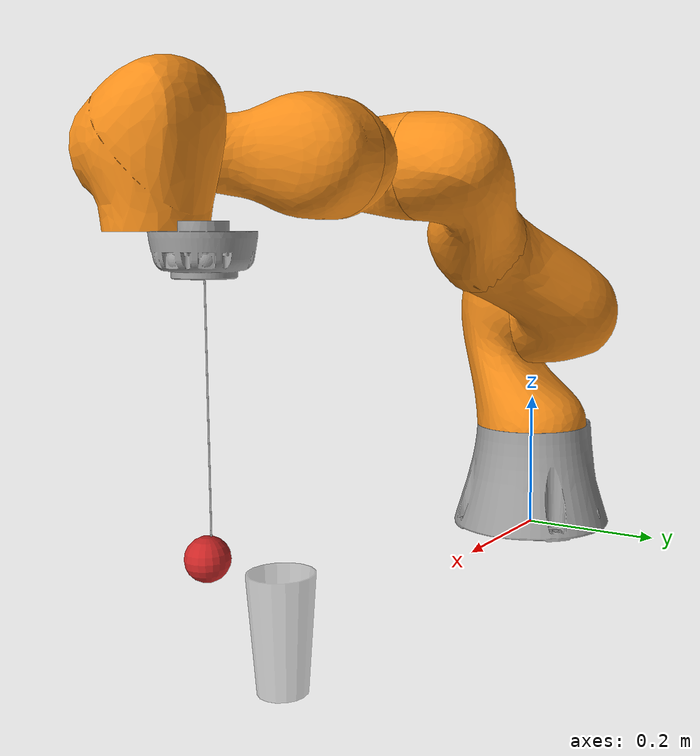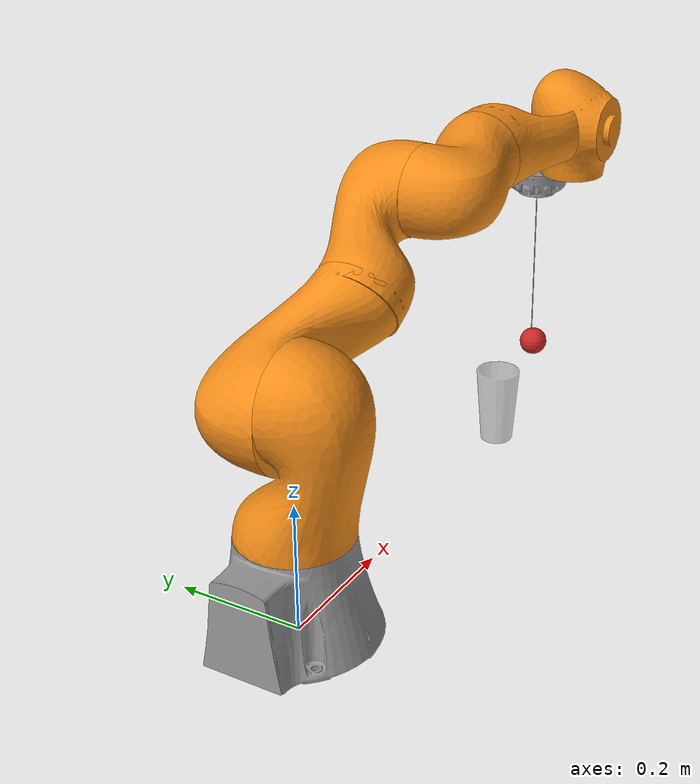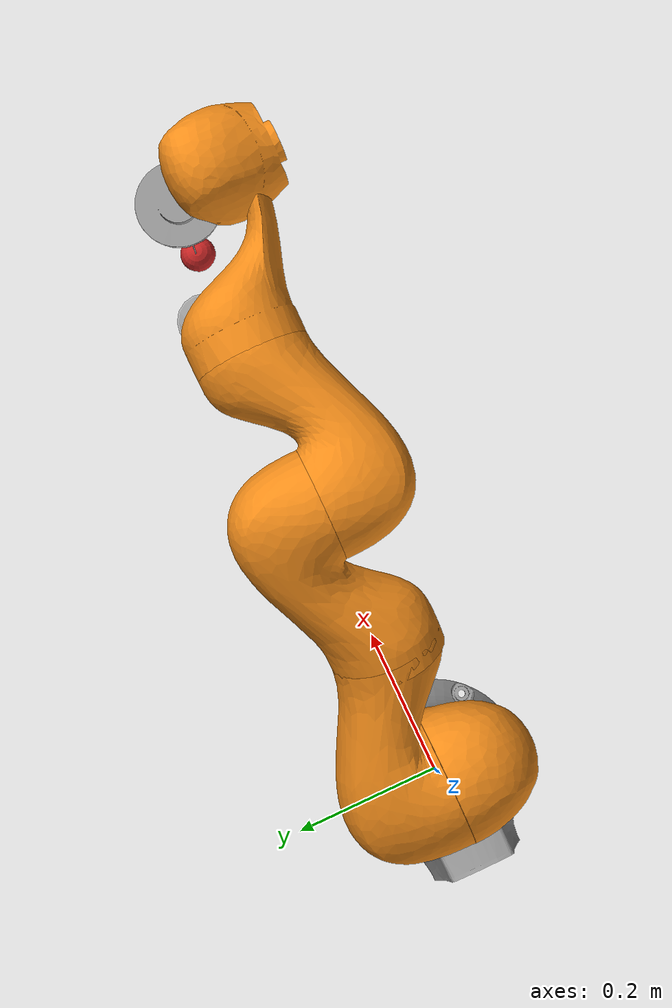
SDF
<?xml version='1.0'?>
<sdf version='1.6'>
  <model name='fish'>
    <link name='iiwa_link_0'>
      <pose frame=''>0 0 0 0 -0 0</pose>
      <inertial>
        <pose frame=''>-0.1 0 0.07 0 -0 0</pose>
        <mass>5</mass>
        <inertia>
          <ixx>0.05</ixx>
          <ixy>0</ixy>
          <ixz>0</ixz>
          <iyy>0.06</iyy>
          <iyz>0</iyz>
          <izz>0.03</izz>
        </inertia>
      </inertial>
      <gravity>1</gravity>
      <velocity_decay/>
      <self_collide>0</self_collide>
      <enable_wind>0</enable_wind>
      <kinematic>0</kinematic>
      <visual name='iiwa_link_0_visual'>
        <pose frame=''>0 0 0 0 -0 0</pose>
        <geometry>
          <mesh>
            <scale>1 1 1</scale>
            <uri>/home/snehal/Desktop/Thesis/IfO/KUKA_Task/ros_ws/src/iiwa_stack/iiwa_description/meshes/iiwa7/visual/link_0.stl</uri>
          </mesh>
        </geometry>
        <material>
          <script>
            <name>Gazebo/Grey</name>
            <uri>file://media/materials/scripts/gazebo.material</uri>
          </script>
        </material>
        <transparency>0</transparency>
        <cast_shadows>1</cast_shadows>
      </visual>
      <collision name='iiwa_link_0_collision'>
        <laser_retro>0</laser_retro>
        <max_contacts>10</max_contacts>
        <pose frame=''>0 0 0 0 -0 0</pose>
        <geometry>
          <mesh>
            <uri>/home/snehal/Desktop/Thesis/IfO/KUKA_Task/ros_ws/src/iiwa_stack/iiwa_description/meshes/iiwa7/collision/link_0.stl</uri>
            <scale>1 1 1</scale>
          </mesh>
        </geometry>
        <surface>
          <friction>
            <ode>
              <mu>0.2</mu>
              <mu2>0.2</mu2>
              <fdir1>0 0 0</fdir1>
              <slip1>0</slip1>
              <slip2>0</slip2>
            </ode>
            <torsional>
              <coefficient>1</coefficient>
              <patch_radius>0</patch_radius>
              <surface_radius>0</surface_radius>
              <use_patch_radius>1</use_patch_radius>
              <ode>
                <slip>0</slip>
              </ode>
            </torsional>
          </friction>
          <bounce>
            <restitution_coefficient>0</restitution_coefficient>
            <threshold>1e+06</threshold>
          </bounce>
          <contact>
            <collide_without_contact>0</collide_without_contact>
            <collide_without_contact_bitmask>1</collide_without_contact_bitmask>
            <collide_bitmask>1</collide_bitmask>
            <ode>
              <soft_cfm>0</soft_cfm>
              <soft_erp>0.2</soft_erp>
              <kp>1e+13</kp>
              <kd>1</kd>
              <max_vel>0.01</max_vel>
              <min_depth>0</min_depth>
            </ode>
            <bullet>
              <split_impulse>1</split_impulse>
              <split_impulse_penetration_threshold>-0.01</split_impulse_penetration_threshold>
              <soft_cfm>0</soft_cfm>
              <soft_erp>0.2</soft_erp>
              <kp>1e+13</kp>
              <kd>1</kd>
            </bullet>
          </contact>
        </surface>
      </collision>
    </link>
    <link name='iiwa_link_1'>
      <pose frame=''>0 0 0.15 0 -0 0</pose>
      <inertial>
        <pose frame=''>0 -0.03 0.12 0 -0 0</pose>
        <mass>3.4525</mass>
        <inertia>
          <ixx>0.02183</ixx>
          <ixy>0</ixy>
          <ixz>0</ixz>
          <iyy>0.007703</iyy>
          <iyz>-0.003887</iyz>
          <izz>0.02083</izz>
        </inertia>
      </inertial>
      <gravity>1</gravity>
      <velocity_decay/>
      <self_collide>0</self_collide>
      <enable_wind>0</enable_wind>
      <kinematic>0</kinematic>
      <visual name='iiwa_link_1_visual'>
        <pose frame=''>0 0 0.0075 0 -0 0</pose>
        <geometry>
          <mesh>
            <scale>1 1 1</scale>
            <uri>/home/snehal/Desktop/Thesis/IfO/KUKA_Task/ros_ws/src/iiwa_stack/iiwa_description/meshes/iiwa7/visual/link_1.stl</uri>
          </mesh>
        </geometry>
        <material>
          <script>
            <name>Gazebo/Orange</name>
            <uri>file://media/materials/scripts/gazebo.material</uri>
          </script>
          <emissive>0 0 0 1</emissive>
        </material>
        <transparency>0</transparency>
        <cast_shadows>1</cast_shadows>
      </visual>
      <collision name='iiwa_link_1_collision'>
        <laser_retro>0</laser_retro>
        <max_contacts>10</max_contacts>
        <pose frame=''>0 0 0.0075 0 -0 0</pose>
        <geometry>
          <mesh>
            <uri>/home/snehal/Desktop/Thesis/IfO/KUKA_Task/ros_ws/src/iiwa_stack/iiwa_description/meshes/iiwa7/collision/link_1.stl</uri>
            <scale>1 1 1</scale>
          </mesh>
        </geometry>
        <surface>
          <friction>
            <ode>
              <mu>0.2</mu>
              <mu2>0.2</mu2>
              <fdir1>0 0 0</fdir1>
              <slip1>0</slip1>
              <slip2>0</slip2>
            </ode>
            <torsional>
              <coefficient>1</coefficient>
              <patch_radius>0</patch_radius>
              <surface_radius>0</surface_radius>
              <use_patch_radius>1</use_patch_radius>
              <ode>
                <slip>0</slip>
              </ode>
            </torsional>
          </friction>
          <bounce>
            <restitution_coefficient>0</restitution_coefficient>
            <threshold>1e+06</threshold>
          </bounce>
          <contact>
            <collide_without_contact>0</collide_without_contact>
            <collide_without_contact_bitmask>1</collide_without_contact_bitmask>
            <collide_bitmask>1</collide_bitmask>
            <ode>
              <soft_cfm>0</soft_cfm>
              <soft_erp>0.2</soft_erp>
              <kp>1e+13</kp>
              <kd>1</kd>
              <max_vel>0.01</max_vel>
              <min_depth>0</min_depth>
            </ode>
            <bullet>
              <split_impulse>1</split_impulse>
              <split_impulse_penetration_threshold>-0.01</split_impulse_penetration_threshold>
              <soft_cfm>0</soft_cfm>
              <soft_erp>0.2</soft_erp>
              <kp>1e+13</kp>
              <kd>1</kd>
            </bullet>
          </contact>
        </surface>
      </collision>
    </link>
    <link name='iiwa_link_2'>
      <pose frame=''>0 0 0.34 1.5708 -1.0472 -3.14159</pose>
      <inertial>
        <pose frame=''>0.0003 0.059 0.042 0 -0 0</pose>
        <mass>3.4821</mass>
        <inertia>
          <ixx>0.02076</ixx>
          <ixy>0</ixy>
          <ixz>-0.003626</ixz>
          <iyy>0.02179</iyy>
          <iyz>0</iyz>
          <izz>0.00779</izz>
        </inertia>
      </inertial>
      <gravity>1</gravity>
      <velocity_decay/>
      <self_collide>0</self_collide>
      <enable_wind>0</enable_wind>
      <kinematic>0</kinematic>
      <visual name='iiwa_link_2_visual'>
        <pose frame=''>0 0 0 0 -0 0</pose>
        <geometry>
          <mesh>
            <scale>1 1 1</scale>
            <uri>/home/snehal/Desktop/Thesis/IfO/KUKA_Task/ros_ws/src/iiwa_stack/iiwa_description/meshes/iiwa7/visual/link_2.stl</uri>
          </mesh>
        </geometry>
        <material>
          <script>
            <name>Gazebo/Orange</name>
            <uri>file://media/materials/scripts/gazebo.material</uri>
          </script>
          <emissive>0 0 0 1</emissive>
        </material>
        <transparency>0</transparency>
        <cast_shadows>1</cast_shadows>
      </visual>
      <collision name='iiwa_link_2_collision'>
        <laser_retro>0</laser_retro>
        <max_contacts>10</max_contacts>
        <pose frame=''>0 0 0 0 -0 0</pose>
        <geometry>
          <mesh>
            <uri>/home/snehal/Desktop/Thesis/IfO/KUKA_Task/ros_ws/src/iiwa_stack/iiwa_description/meshes/iiwa7/collision/link_2.stl</uri>
            <scale>1 1 1</scale>
          </mesh>
        </geometry>
        <surface>
          <friction>
            <ode>
              <mu>0.2</mu>
              <mu2>0.2</mu2>
              <fdir1>0 0 0</fdir1>
              <slip1>0</slip1>
              <slip2>0</slip2>
            </ode>
            <torsional>
              <coefficient>1</coefficient>
              <patch_radius>0</patch_radius>
              <surface_radius>0</surface_radius>
              <use_patch_radius>1</use_patch_radius>
              <ode>
                <slip>0</slip>
              </ode>
            </torsional>
          </friction>
          <bounce>
            <restitution_coefficient>0</restitution_coefficient>
            <threshold>1e+06</threshold>
          </bounce>
          <contact>
            <collide_without_contact>0</collide_without_contact>
            <collide_without_contact_bitmask>1</collide_without_contact_bitmask>
            <collide_bitmask>1</collide_bitmask>
            <ode>
              <soft_cfm>0</soft_cfm>
              <soft_erp>0.2</soft_erp>
              <kp>1e+13</kp>
              <kd>1</kd>
              <max_vel>0.01</max_vel>
              <min_depth>0</min_depth>
            </ode>
            <bullet>
              <split_impulse>1</split_impulse>
              <split_impulse_penetration_threshold>-0.01</split_impulse_penetration_threshold>
              <soft_cfm>0</soft_cfm>
              <soft_erp>0.2</soft_erp>
              <kp>1e+13</kp>
              <kd>1</kd>
            </bullet>
          </contact>
        </surface>
      </collision>
    </link>
    <link name='iiwa_link_3'>
      <pose frame=''>0.181865 0 0.445 0 1.0472 0</pose>
      <inertial>
        <pose frame=''>0 0.03 0.13 0 -0 0</pose>
        <mass>4.05623</mass>
        <inertia>
          <ixx>0.03204</ixx>
          <ixy>0</ixy>
          <ixz>0</ixz>
          <iyy>0.00972</iyy>
          <iyz>0.006227</iyz>
          <izz>0.03042</izz>
        </inertia>
      </inertial>
      <gravity>1</gravity>
      <velocity_decay/>
      <self_collide>0</self_collide>
      <enable_wind>0</enable_wind>
      <kinematic>0</kinematic>
      <visual name='iiwa_link_3_visual'>
        <pose frame=''>0 0 -0.026 0 -0 0</pose>
        <geometry>
          <mesh>
            <scale>1 1 1</scale>
            <uri>/home/snehal/Desktop/Thesis/IfO/KUKA_Task/ros_ws/src/iiwa_stack/iiwa_description/meshes/iiwa7/visual/link_3.stl</uri>
          </mesh>
        </geometry>
        <material>
          <script>
            <name>Gazebo/Orange</name>
            <uri>file://media/materials/scripts/gazebo.material</uri>
          </script>
          <emissive>0 0 0 1</emissive>
        </material>
        <transparency>0</transparency>
        <cast_shadows>1</cast_shadows>
      </visual>
      <collision name='iiwa_link_3_collision'>
        <laser_retro>0</laser_retro>
        <max_contacts>10</max_contacts>
        <pose frame=''>0 0 -0.026 0 -0 0</pose>
        <geometry>
          <mesh>
            <uri>/home/snehal/Desktop/Thesis/IfO/KUKA_Task/ros_ws/src/iiwa_stack/iiwa_description/meshes/iiwa7/collision/link_3.stl</uri>
            <scale>1 1 1</scale>
          </mesh>
        </geometry>
        <surface>
          <friction>
            <ode>
              <mu>0.2</mu>
              <mu2>0.2</mu2>
              <fdir1>0 0 0</fdir1>
              <slip1>0</slip1>
              <slip2>0</slip2>
            </ode>
            <torsional>
              <coefficient>1</coefficient>
              <patch_radius>0</patch_radius>
              <surface_radius>0</surface_radius>
              <use_patch_radius>1</use_patch_radius>
              <ode>
                <slip>0</slip>
              </ode>
            </torsional>
          </friction>
          <bounce>
            <restitution_coefficient>0</restitution_coefficient>
            <threshold>1e+06</threshold>
          </bounce>
          <contact>
            <collide_without_contact>0</collide_without_contact>
            <collide_without_contact_bitmask>1</collide_without_contact_bitmask>
            <collide_bitmask>1</collide_bitmask>
            <ode>
              <soft_cfm>0</soft_cfm>
              <soft_erp>0.2</soft_erp>
              <kp>1e+13</kp>
              <kd>1</kd>
              <max_vel>0.01</max_vel>
              <min_depth>0</min_depth>
            </ode>
            <bullet>
              <split_impulse>1</split_impulse>
              <split_impulse_penetration_threshold>-0.01</split_impulse_penetration_threshold>
              <soft_cfm>0</soft_cfm>
              <soft_erp>0.2</soft_erp>
              <kp>1e+13</kp>
              <kd>1</kd>
            </bullet>
          </contact>
        </surface>
      </collision>
    </link>
    <link name='iiwa_link_4'>
      <pose frame=''>0.34641 0 0.54 -1.57079 1.57079 3.14159</pose>
      <inertial>
        <pose frame=''>0 0.067 0.034 0 -0 0</pose>
        <mass>3.4822</mass>
        <inertia>
          <ixx>0.02178</ixx>
          <ixy>0</ixy>
          <ixz>0</ixz>
          <iyy>0.02075</iyy>
          <iyz>-0.003625</iyz>
          <izz>0.007785</izz>
        </inertia>
      </inertial>
      <gravity>1</gravity>
      <velocity_decay/>
      <self_collide>0</self_collide>
      <enable_wind>0</enable_wind>
      <kinematic>0</kinematic>
      <visual name='iiwa_link_4_visual'>
        <pose frame=''>0 0 0 0 -0 0</pose>
        <geometry>
          <mesh>
            <scale>1 1 1</scale>
            <uri>/home/snehal/Desktop/Thesis/IfO/KUKA_Task/ros_ws/src/iiwa_stack/iiwa_description/meshes/iiwa7/visual/link_4.stl</uri>
          </mesh>
        </geometry>
        <material>
          <script>
            <name>Gazebo/Orange</name>
            <uri>file://media/materials/scripts/gazebo.material</uri>
          </script>
          <emissive>0 0 0 1</emissive>
        </material>
        <transparency>0</transparency>
        <cast_shadows>1</cast_shadows>
      </visual>
      <collision name='iiwa_link_4_collision'>
        <laser_retro>0</laser_retro>
        <max_contacts>10</max_contacts>
        <pose frame=''>0 0 0 0 -0 0</pose>
        <geometry>
          <mesh>
            <uri>/home/snehal/Desktop/Thesis/IfO/KUKA_Task/ros_ws/src/iiwa_stack/iiwa_description/meshes/iiwa7/collision/link_4.stl</uri>
            <scale>1 1 1</scale>
          </mesh>
        </geometry>
        <surface>
          <friction>
            <ode>
              <mu>0.2</mu>
              <mu2>0.2</mu2>
              <fdir1>0 0 0</fdir1>
              <slip1>0</slip1>
              <slip2>0</slip2>
            </ode>
            <torsional>
              <coefficient>1</coefficient>
              <patch_radius>0</patch_radius>
              <surface_radius>0</surface_radius>
              <use_patch_radius>1</use_patch_radius>
              <ode>
                <slip>0</slip>
              </ode>
            </torsional>
          </friction>
          <bounce>
            <restitution_coefficient>0</restitution_coefficient>
            <threshold>1e+06</threshold>
          </bounce>
          <contact>
            <collide_without_contact>0</collide_without_contact>
            <collide_without_contact_bitmask>1</collide_without_contact_bitmask>
            <collide_bitmask>1</collide_bitmask>
            <ode>
              <soft_cfm>0</soft_cfm>
              <soft_erp>0.2</soft_erp>
              <kp>1e+13</kp>
              <kd>1</kd>
              <max_vel>0.01</max_vel>
              <min_depth>0</min_depth>
            </ode>
            <bullet>
              <split_impulse>1</split_impulse>
              <split_impulse_penetration_threshold>-0.01</split_impulse_penetration_threshold>
              <soft_cfm>0</soft_cfm>
              <soft_erp>0.2</soft_erp>
              <kp>1e+13</kp>
              <kd>1</kd>
            </bullet>
          </contact>
        </surface>
      </collision>
    </link>
    <link name='iiwa_link_5'>
      <pose frame=''>0.55641 0 0.54 3e-06 -1.57079 3.14159</pose>
      <inertial>
        <pose frame=''>0.0001 0.021 0.076 0 -0 0</pose>
        <mass>2.1633</mass>
        <inertia>
          <ixx>0.01287</ixx>
          <ixy>0</ixy>
          <ixz>0</ixz>
          <iyy>0.005708</iyy>
          <iyz>-0.003946</iyz>
          <izz>0.01112</izz>
        </inertia>
      </inertial>
      <gravity>1</gravity>
      <velocity_decay/>
      <self_collide>0</self_collide>
      <enable_wind>0</enable_wind>
      <kinematic>0</kinematic>
      <visual name='iiwa_link_5_visual'>
        <pose frame=''>0 0 -0.026 0 -0 0</pose>
        <geometry>
          <mesh>
            <scale>1 1 1</scale>
            <uri>/home/snehal/Desktop/Thesis/IfO/KUKA_Task/ros_ws/src/iiwa_stack/iiwa_description/meshes/iiwa7/visual/link_5.stl</uri>
          </mesh>
        </geometry>
        <material>
          <script>
            <name>Gazebo/Orange</name>
            <uri>file://media/materials/scripts/gazebo.material</uri>
          </script>
        </material>
        <transparency>0</transparency>
        <cast_shadows>1</cast_shadows>
      </visual>
      <collision name='iiwa_link_5_collision'>
        <laser_retro>0</laser_retro>
        <max_contacts>10</max_contacts>
        <pose frame=''>0 0 -0.026 0 -0 0</pose>
        <geometry>
          <mesh>
            <uri>/home/snehal/Desktop/Thesis/IfO/KUKA_Task/ros_ws/src/iiwa_stack/iiwa_description/meshes/iiwa7/collision/link_5.stl</uri>
            <scale>1 1 1</scale>
          </mesh>
        </geometry>
        <surface>
          <friction>
            <ode>
              <mu>0.2</mu>
              <mu2>0.2</mu2>
              <fdir1>0 0 0</fdir1>
              <slip1>0</slip1>
              <slip2>0</slip2>
            </ode>
            <torsional>
              <coefficient>1</coefficient>
              <patch_radius>0</patch_radius>
              <surface_radius>0</surface_radius>
              <use_patch_radius>1</use_patch_radius>
              <ode>
                <slip>0</slip>
              </ode>
            </torsional>
          </friction>
          <bounce>
            <restitution_coefficient>0</restitution_coefficient>
            <threshold>1e+06</threshold>
          </bounce>
          <contact>
            <collide_without_contact>0</collide_without_contact>
            <collide_without_contact_bitmask>1</collide_without_contact_bitmask>
            <collide_bitmask>1</collide_bitmask>
            <ode>
              <soft_cfm>0</soft_cfm>
              <soft_erp>0.2</soft_erp>
              <kp>1e+13</kp>
              <kd>1</kd>
              <max_vel>0.01</max_vel>
              <min_depth>0</min_depth>
            </ode>
            <bullet>
              <split_impulse>1</split_impulse>
              <split_impulse_penetration_threshold>-0.01</split_impulse_penetration_threshold>
              <soft_cfm>0</soft_cfm>
              <soft_erp>0.2</soft_erp>
              <kp>1e+13</kp>
              <kd>1</kd>
            </bullet>
          </contact>
        </surface>
      </collision>
    </link>
    <link name='iiwa_link_6'>
      <pose frame=''>0.74641 -0.0607 0.54 -1.5708 0 0</pose>
      <inertial>
        <pose frame=''>0 0.0006 0.0004 0 -0 0</pose>
        <mass>2.3466</mass>
        <inertia>
          <ixx>0.006509</ixx>
          <ixy>0</ixy>
          <ixz>0</ixz>
          <iyy>0.006259</iyy>
          <iyz>0.00031891</iyz>
          <izz>0.004527</izz>
        </inertia>
      </inertial>
      <gravity>1</gravity>
      <velocity_decay/>
      <self_collide>0</self_collide>
      <enable_wind>0</enable_wind>
      <kinematic>0</kinematic>
      <visual name='iiwa_link_6_visual'>
        <pose frame=''>0 0 0 0 -0 0</pose>
        <geometry>
          <mesh>
            <scale>1 1 1</scale>
            <uri>/home/snehal/Desktop/Thesis/IfO/KUKA_Task/ros_ws/src/iiwa_stack/iiwa_description/meshes/iiwa7/visual/link_6.stl</uri>
          </mesh>
        </geometry>
        <material>
          <script>
            <name>Gazebo/Orange</name>
            <uri>file://media/materials/scripts/gazebo.material</uri>
          </script>
          <emissive>0 0 0 1</emissive>
        </material>
        <transparency>0</transparency>
        <cast_shadows>1</cast_shadows>
      </visual>
      <collision name='iiwa_link_6_collision'>
        <laser_retro>0</laser_retro>
        <max_contacts>10</max_contacts>
        <pose frame=''>0 0 0 0 -0 0</pose>
        <geometry>
          <mesh>
            <uri>/home/snehal/Desktop/Thesis/IfO/KUKA_Task/ros_ws/src/iiwa_stack/iiwa_description/meshes/iiwa7/collision/link_6.stl</uri>
            <scale>1 1 1</scale>
          </mesh>
        </geometry>
        <surface>
          <friction>
            <ode>
              <mu>0.2</mu>
              <mu2>0.2</mu2>
              <fdir1>0 0 0</fdir1>
              <slip1>0</slip1>
              <slip2>0</slip2>
            </ode>
            <torsional>
              <coefficient>1</coefficient>
              <patch_radius>0</patch_radius>
              <surface_radius>0</surface_radius>
              <use_patch_radius>1</use_patch_radius>
              <ode>
                <slip>0</slip>
              </ode>
            </torsional>
          </friction>
          <bounce>
            <restitution_coefficient>0</restitution_coefficient>
            <threshold>1e+06</threshold>
          </bounce>
          <contact>
            <collide_without_contact>0</collide_without_contact>
            <collide_without_contact_bitmask>1</collide_without_contact_bitmask>
            <collide_bitmask>1</collide_bitmask>
            <ode>
              <soft_cfm>0</soft_cfm>
              <soft_erp>0.2</soft_erp>
              <kp>1e+13</kp>
              <kd>1</kd>
              <max_vel>0.01</max_vel>
              <min_depth>0</min_depth>
            </ode>
            <bullet>
              <split_impulse>1</split_impulse>
              <split_impulse_penetration_threshold>-0.01</split_impulse_penetration_threshold>
              <soft_cfm>0</soft_cfm>
              <soft_erp>0.2</soft_erp>
              <kp>1e+13</kp>
              <kd>1</kd>
            </bullet>
          </contact>
        </surface>
      </collision>
    </link>
    <link name='iiwa_link_7'>
      <pose frame=''>0.74641 0 0.459 -3.14159 -0 -3.14159</pose>
      <inertial>
        <pose frame=''>0 0 0.02 0 -0 0</pose>
        <mass>3.129</mass>
        <inertia>
          <ixx>0.01464</ixx>
          <ixy>0.0005912</ixy>
          <ixz>0</ixz>
          <iyy>0.01465</iyy>
          <iyz>0</iyz>
          <izz>0.002872</izz>
        </inertia>
      </inertial>
      <gravity>1</gravity>
      <velocity_decay/>
      <self_collide>0</self_collide>
      <enable_wind>0</enable_wind>
      <kinematic>0</kinematic>
      <visual name='iiwa_link_7_visual'>
        <pose frame=''>0 0 -0.0005 0 -0 0</pose>
        <geometry>
          <mesh>
            <scale>1 1 1</scale>
            <uri>/home/snehal/Desktop/Thesis/IfO/KUKA_Task/ros_ws/src/iiwa_stack/iiwa_description/meshes/iiwa7/visual/link_7.stl</uri>
          </mesh>
        </geometry>
        <material>
          <script>
            <name>Gazebo/Grey</name>
            <uri>file://media/materials/scripts/gazebo.material</uri>
          </script>
          <emissive>0 0 0 1</emissive>
        </material>
        <transparency>0</transparency>
        <cast_shadows>1</cast_shadows>
      </visual>
      <visual name='iiwa_link_7_fixed_joint_lump__tool_link_visual_1'>
        <pose frame=''>0 0 0.195 0 -0 0</pose>
        <geometry>
          <cylinder>
            <length>0.3</length>
            <radius>0.0009</radius>
          </cylinder>
        </geometry>
        <transparency>0</transparency>
        <cast_shadows>1</cast_shadows>
        <material>
          <emissive>0 0 0 1</emissive>
        </material>
      </visual>
      <collision name='iiwa_link_7_collision'>
        <laser_retro>0</laser_retro>
        <max_contacts>10</max_contacts>
        <pose frame=''>0 0 -0.0005 0 -0 0</pose>
        <geometry>
          <mesh>
            <uri>/home/snehal/Desktop/Thesis/IfO/KUKA_Task/ros_ws/src/iiwa_stack/iiwa_description/meshes/iiwa7/collision/link_7.stl</uri>
            <scale>1 1 1</scale>
          </mesh>
        </geometry>
        <surface>
          <friction>
            <ode>
              <mu>0.2</mu>
              <mu2>0.2</mu2>
              <fdir1>0 0 0</fdir1>
              <slip1>0</slip1>
              <slip2>0</slip2>
            </ode>
            <torsional>
              <coefficient>1</coefficient>
              <patch_radius>0</patch_radius>
              <surface_radius>0</surface_radius>
              <use_patch_radius>1</use_patch_radius>
              <ode>
                <slip>0</slip>
              </ode>
            </torsional>
          </friction>
          <bounce>
            <restitution_coefficient>0</restitution_coefficient>
            <threshold>1e+06</threshold>
          </bounce>
          <contact>
            <collide_without_contact>0</collide_without_contact>
            <collide_without_contact_bitmask>1</collide_without_contact_bitmask>
            <collide_bitmask>1</collide_bitmask>
            <ode>
              <soft_cfm>0</soft_cfm>
              <soft_erp>0.2</soft_erp>
              <kp>1e+13</kp>
              <kd>1</kd>
              <max_vel>0.01</max_vel>
              <min_depth>0</min_depth>
            </ode>
            <bullet>
              <split_impulse>1</split_impulse>
              <split_impulse_penetration_threshold>-0.01</split_impulse_penetration_threshold>
              <soft_cfm>0</soft_cfm>
              <soft_erp>0.2</soft_erp>
              <kp>1e+13</kp>
              <kd>1</kd>
            </bullet>
          </contact>
        </surface>
      </collision>
      <collision name='iiwa_link_7_fixed_joint_lump__tool_link_collision_1'>
        <laser_retro>0</laser_retro>
        <max_contacts>10</max_contacts>
        <pose frame=''>0 0 0.195 0 -0 0</pose>
        <geometry>
          <cylinder>
            <radius>0.0009</radius>
            <length>0.3</length>
          </cylinder>
        </geometry>
        <surface>
          <friction>
            <ode>
              <mu>1</mu>
              <mu2>1</mu2>
              <fdir1>0 0 0</fdir1>
              <slip1>0</slip1>
              <slip2>0</slip2>
            </ode>
            <torsional>
              <coefficient>1</coefficient>
              <patch_radius>0</patch_radius>
              <surface_radius>0</surface_radius>
              <use_patch_radius>1</use_patch_radius>
              <ode>
                <slip>0</slip>
              </ode>
            </torsional>
          </friction>
          <bounce>
            <restitution_coefficient>0</restitution_coefficient>
            <threshold>1e+06</threshold>
          </bounce>
          <contact>
            <collide_without_contact>0</collide_without_contact>
            <collide_without_contact_bitmask>1</collide_without_contact_bitmask>
            <collide_bitmask>1</collide_bitmask>
            <ode>
              <soft_cfm>0</soft_cfm>
              <soft_erp>0.2</soft_erp>
              <kp>1e+13</kp>
              <kd>1</kd>
              <max_vel>0.01</max_vel>
              <min_depth>0</min_depth>
            </ode>
            <bullet>
              <split_impulse>1</split_impulse>
              <split_impulse_penetration_threshold>-0.01</split_impulse_penetration_threshold>
              <soft_cfm>0</soft_cfm>
              <soft_erp>0.2</soft_erp>
              <kp>1e+13</kp>
              <kd>1</kd>
            </bullet>
          </contact>
        </surface>
      </collision>
    </link>
    <link name='link_0'>
      <inertial>
        <mass>0.00010088</mass>
        <inertia>
          <ixx>2.18545e-08</ixx>
          <ixy>0</ixy>
          <ixz>0</ixz>
          <iyy>2.18545e-08</iyy>
          <iyz>0</iyz>
          <izz>2.18545e-08</izz>
        </inertia>
        <pose frame=''>0 0 0 0 -0 0</pose>
      </inertial>
      <pose frame=''>0.749347 -0.002634 0.137272 0 -0 0</pose>
      <gravity>1</gravity>
      <self_collide>0</self_collide>
      <kinematic>0</kinematic>
      <enable_wind>0</enable_wind>
      <visual name='visual'>
        <pose frame=''>0 0 0 0 -0 0</pose>
        <geometry>
          <sphere>
            <radius>0.0232722</radius>
          </sphere>
        </geometry>
        <material>
          <lighting>1</lighting>
          <script>
            <uri>file://media/materials/scripts/gazebo.material</uri>
            <name>Gazebo/Red</name>
          </script>
          <shader type='vertex'>
            <normal_map>__default__</normal_map>
          </shader>
          <ambient>0.9 0.3 0.3 1</ambient>
          <diffuse>0.9 0.7 0.7 1</diffuse>
          <specular>0.91 0.01 0.01 1</specular>
          <emissive>0 0 0 1</emissive>
        </material>
        <transparency>0</transparency>
        <cast_shadows>1</cast_shadows>
      </visual>
      <collision name='collision'>
        <laser_retro>0</laser_retro>
        <max_contacts>10</max_contacts>
        <pose frame=''>0 0 0 0 -0 0</pose>
        <geometry>
          <sphere>
            <radius>0.023272</radius>
          </sphere>
        </geometry>
        <surface>
          <friction>
            <ode>
              <mu>1</mu>
              <mu2>1</mu2>
              <fdir1>0 0 0</fdir1>
              <slip1>0</slip1>
              <slip2>0</slip2>
            </ode>
            <torsional>
              <coefficient>1</coefficient>
              <patch_radius>0</patch_radius>
              <surface_radius>0</surface_radius>
              <use_patch_radius>1</use_patch_radius>
              <ode>
                <slip>0</slip>
              </ode>
            </torsional>
          </friction>
          <bounce>
            <restitution_coefficient>0</restitution_coefficient>
            <threshold>1e+06</threshold>
          </bounce>
          <contact>
            <collide_without_contact>0</collide_without_contact>
            <collide_without_contact_bitmask>1</collide_without_contact_bitmask>
            <collide_bitmask>1</collide_bitmask>
            <ode>
              <soft_cfm>0</soft_cfm>
              <soft_erp>0.2</soft_erp>
              <kp>1e+13</kp>
              <kd>1</kd>
              <max_vel>0.01</max_vel>
              <min_depth>0</min_depth>
            </ode>
            <bullet>
              <split_impulse>1</split_impulse>
              <split_impulse_penetration_threshold>-0.01</split_impulse_penetration_threshold>
              <soft_cfm>0</soft_cfm>
              <soft_erp>0.2</soft_erp>
              <kp>1e+13</kp>
              <kd>1</kd>
            </bullet>
          </contact>
        </surface>
      </collision>
    </link>
    <model name='plastic_cup'>
      <link name='link'>
        <pose frame=''>0 0 0.065 0 -0 0</pose>
        <inertial>
          <mass>0.0599</mass>
          <inertia>
            <ixx>0.000302896</ixx>
            <ixy>0</ixy>
            <ixz>0</ixz>
            <iyy>0.000302896</iyy>
            <iyz>0</iyz>
            <izz>3.28764e-05</izz>
          </inertia>
        </inertial>
        <collision name='collision'>
          <geometry>
            <mesh>
              <uri>model://plastic_cup/meshes/plastic_cup.dae</uri>
            </mesh>
          </geometry>
          <surface>
            <contact>
              <poissons_ratio>0.35</poissons_ratio>
              <elastic_modulus>3.10264e+09</elastic_modulus>
              <ode>
                <kp>100000</kp>
                <kd>100</kd>
                <max_vel>100</max_vel>
                <min_depth>0.001</min_depth>
              </ode>
            </contact>
            <friction>
              <torsional>
                <coefficient>1</coefficient>
                <use_patch_radius>0</use_patch_radius>
                <surface_radius>0.01</surface_radius>
              </torsional>
            </friction>
          </surface>
        </collision>
        <visual name='visual'>
          <geometry>
            <mesh>
              <uri>model://plastic_cup/meshes/plastic_cup.dae</uri>
            </mesh>
          </geometry>
          <material>
            <script>
              <uri>file://media/materials/scripts/gazebo.material</uri>
              <name>Gazebo/GreyTransparent</name>
            </script>
          </material>
        </visual>
      </link>
      <pose frame=''>0.670425 0.018157 -0.017091 0 -0 0</pose>
    </model>
    <joint name='iiwa_joint_1' type='revolute'>
      <parent>iiwa_link_0</parent>
      <child>iiwa_link_1</child>
      <pose frame=''>0 0 0 0 -0 0</pose>
      <axis>
        <xyz>0 0 1</xyz>
        <use_parent_model_frame>1</use_parent_model_frame>
        <limit>
          <lower>-2.96706</lower>
          <upper>2.96706</upper>
          <effort>300</effort>
          <velocity>10</velocity>
        </limit>
        <dynamics>
          <spring_reference>0</spring_reference>
          <spring_stiffness>0</spring_stiffness>
          <damping>0.5</damping>
          <friction>0</friction>
        </dynamics>
      </axis>
      <physics>
        <ode>
          <limit>
            <cfm>0</cfm>
            <erp>0.2</erp>
          </limit>
          <suspension>
            <cfm>0</cfm>
            <erp>0.2</erp>
          </suspension>
        </ode>
      </physics>
    </joint>
    <joint name='iiwa_joint_2' type='revolute'>
      <parent>iiwa_link_1</parent>
      <child>iiwa_link_2</child>
      <pose frame=''>0 0 0 0 -0 0</pose>
      <axis>
        <xyz>0 1 0</xyz>
        <use_parent_model_frame>1</use_parent_model_frame>
        <limit>
          <lower>-2.0944</lower>
          <upper>2.0944</upper>
          <effort>300</effort>
          <velocity>10</velocity>
        </limit>
        <dynamics>
          <spring_reference>0</spring_reference>
          <spring_stiffness>0</spring_stiffness>
          <damping>0.5</damping>
          <friction>0</friction>
        </dynamics>
      </axis>
      <physics>
        <ode>
          <limit>
            <cfm>0</cfm>
            <erp>0.2</erp>
          </limit>
          <suspension>
            <cfm>0</cfm>
            <erp>0.2</erp>
          </suspension>
        </ode>
      </physics>
    </joint>
    <joint name='iiwa_joint_3' type='revolute'>
      <parent>iiwa_link_2</parent>
      <child>iiwa_link_3</child>
      <pose frame=''>0 0 0 0 -0 0</pose>
      <axis>
        <xyz>0.866025 0 0.5</xyz>
        <use_parent_model_frame>1</use_parent_model_frame>
        <limit>
          <lower>-2.96706</lower>
          <upper>2.96706</upper>
          <effort>300</effort>
          <velocity>10</velocity>
        </limit>
        <dynamics>
          <spring_reference>0</spring_reference>
          <spring_stiffness>0</spring_stiffness>
          <damping>0.5</damping>
          <friction>0</friction>
        </dynamics>
      </axis>
      <physics>
        <ode>
          <limit>
            <cfm>0</cfm>
            <erp>0.2</erp>
          </limit>
          <suspension>
            <cfm>0</cfm>
            <erp>0.2</erp>
          </suspension>
        </ode>
      </physics>
    </joint>
    <joint name='iiwa_joint_4' type='revolute'>
      <parent>iiwa_link_3</parent>
      <child>iiwa_link_4</child>
      <pose frame=''>0 0 0 0 -0 0</pose>
      <axis>
        <xyz>0 -1 0</xyz>
        <use_parent_model_frame>1</use_parent_model_frame>
        <limit>
          <lower>-2.0944</lower>
          <upper>2.0944</upper>
          <effort>300</effort>
          <velocity>10</velocity>
        </limit>
        <dynamics>
          <spring_reference>0</spring_reference>
          <spring_stiffness>0</spring_stiffness>
          <damping>0.5</damping>
          <friction>0</friction>
        </dynamics>
      </axis>
      <physics>
        <ode>
          <limit>
            <cfm>0</cfm>
            <erp>0.2</erp>
          </limit>
          <suspension>
            <cfm>0</cfm>
            <erp>0.2</erp>
          </suspension>
        </ode>
      </physics>
    </joint>
    <joint name='iiwa_joint_5' type='revolute'>
      <parent>iiwa_link_4</parent>
      <child>iiwa_link_5</child>
      <pose frame=''>0 0 0 0 -0 0</pose>
      <axis>
        <xyz>1 0 -0</xyz>
        <use_parent_model_frame>1</use_parent_model_frame>
        <limit>
          <lower>-2.96706</lower>
          <upper>2.96706</upper>
          <effort>300</effort>
          <velocity>10</velocity>
        </limit>
        <dynamics>
          <spring_reference>0</spring_reference>
          <spring_stiffness>0</spring_stiffness>
          <damping>0.5</damping>
          <friction>0</friction>
        </dynamics>
      </axis>
      <physics>
        <ode>
          <limit>
            <cfm>0</cfm>
            <erp>0.2</erp>
          </limit>
          <suspension>
            <cfm>0</cfm>
            <erp>0.2</erp>
          </suspension>
        </ode>
      </physics>
    </joint>
    <joint name='iiwa_joint_6' type='revolute'>
      <parent>iiwa_link_5</parent>
      <child>iiwa_link_6</child>
      <pose frame=''>0 0 0 0 -0 0</pose>
      <axis>
        <xyz>-0 1 -0</xyz>
        <use_parent_model_frame>1</use_parent_model_frame>
        <limit>
          <lower>-2.0944</lower>
          <upper>2.0944</upper>
          <effort>300</effort>
          <velocity>10</velocity>
        </limit>
        <dynamics>
          <spring_reference>0</spring_reference>
          <spring_stiffness>0</spring_stiffness>
          <damping>0.5</damping>
          <friction>0</friction>
        </dynamics>
      </axis>
      <physics>
        <ode>
          <limit>
            <cfm>0</cfm>
            <erp>0.2</erp>
          </limit>
          <suspension>
            <cfm>0</cfm>
            <erp>0.2</erp>
          </suspension>
        </ode>
      </physics>
    </joint>
    <joint name='iiwa_joint_7' type='revolute'>
      <parent>iiwa_link_6</parent>
      <child>iiwa_link_7</child>
      <pose frame=''>0 0 0 0 -0 0</pose>
      <axis>
        <xyz>0 -0 -1</xyz>
        <use_parent_model_frame>1</use_parent_model_frame>
        <limit>
          <lower>-3.05433</lower>
          <upper>3.05433</upper>
          <effort>300</effort>
          <velocity>10</velocity>
        </limit>
        <dynamics>
          <spring_reference>0</spring_reference>
          <spring_stiffness>0</spring_stiffness>
          <damping>0.5</damping>
          <friction>0</friction>
        </dynamics>
      </axis>
      <physics>
        <ode>
          <limit>
            <cfm>0</cfm>
            <erp>0.2</erp>
          </limit>
          <suspension>
            <cfm>0</cfm>
            <erp>0.2</erp>
          </suspension>
        </ode>
      </physics>
    </joint>
    <joint name='iiwa_link_7_JOINT_1' type='revolute'>
      <parent>iiwa_link_7</parent>
      <child>link_0</child>
      <pose frame=''>0 0 0 0 -0.01 0</pose>
      <axis>
        <xyz>1 0 0</xyz>
        <use_parent_model_frame>0</use_parent_model_frame>
        <limit>
          <lower>-1.79769e+308</lower>
          <upper>1.79769e+308</upper>
          <effort>-1</effort>
          <velocity>-1</velocity>
        </limit>
        <dynamics>
          <spring_reference>0</spring_reference>
          <spring_stiffness>0</spring_stiffness>
          <damping>0</damping>
        </dynamics>
      </axis>
      <physics>
        <ode>
          <limit>
            <cfm>0</cfm>
            <erp>0.2</erp>
          </limit>
          <suspension>
            <cfm>0</cfm>
            <erp>0.2</erp>
          </suspension>
        </ode>
      </physics>
    </joint>
    <static>0</static>
    <allow_auto_disable>1</allow_auto_disable>
  </model>
</sdf>
